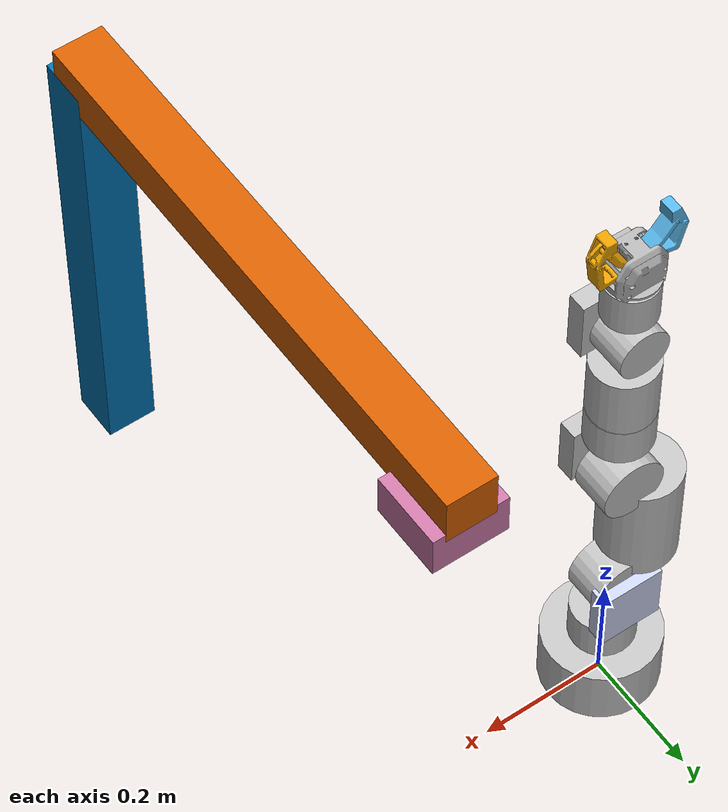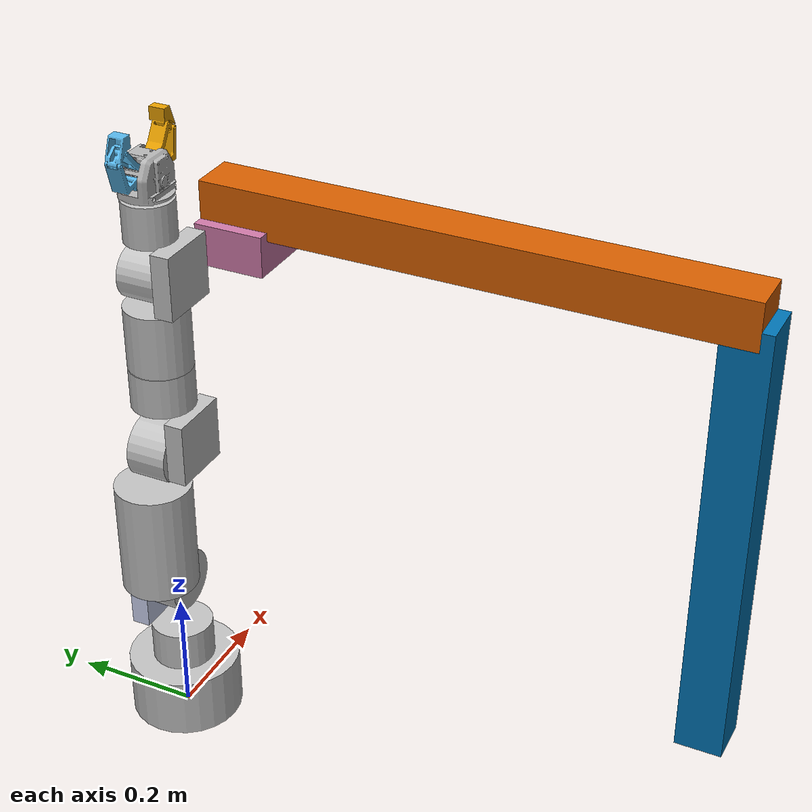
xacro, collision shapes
<?xml version="1.0"?>
<robot xmlns:xacro="http://wiki.ros.org/xacro"
       name="igus_rebel" >
  <xacro:arg name="hardware_protocol" default="rebel"/>
  <xacro:property name="hw_protocol" value="$(arg hardware_protocol)"/>

  <!-- igus_rebel arm and camera stand (no gripper in this file any more) -->
  <xacro:include filename="$(find igus_rebel_description)/urdf/igus_rebel2.urdf" />

  <!-- Gripper, simulated moving fingers in Gazebo, real gripper meshes for everything else -->
  <xacro:if value="${hw_protocol == 'gazebo'}">
    <xacro:include filename="$(find igus_rebel_description)/urdf/sim_gripper.xacro"/>
    <xacro:include filename="$(find igus_rebel_description)/urdf/sim_camera.xacro"/>
  </xacro:if>
  <xacro:unless value="${hw_protocol == 'gazebo'}">
    <xacro:include filename="$(find igus_rebel_description)/urdf/gripper_real.xacro"/>
  </xacro:unless>

  <xacro:include filename="$(find igus_rebel_description)/urdf/igus_rebel2.control.xacro"/>
  <xacro:igus_rebel_control arm_id="rebel_arm" hardware_protocol="$(arg hardware_protocol)"/>

  <link name="world" />

  <joint name="world_joint" type="fixed">
    <parent link="world" />
    <child link = "base_link" />
    <origin xyz="0.0 0.0 0.0" rpy="0.0 0.0 0.0" />
  </joint>

</robot>

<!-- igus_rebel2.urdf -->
<robot
  name="igus_rebel">
  <link
    name="base_link">
    <inertial>
      <origin
        xyz="-0.0011101 -0.00059494 0.040917"
        rpy="0 0 0" />
      <mass
        value="4.2944" />
      <inertia
        ixx="0.098117"
        ixy="4.4465E-07"
        ixz="3.3605E-05"
        iyy="0.086593"
        iyz="-1.8837E-06"
        izz="0.12838" />
    </inertial>
    <visual>
      <origin
        xyz="0 0 0"
        rpy="0 0 0" />
      <geometry>
        <mesh
          filename="file://$(find igus_rebel_description)/meshes/robolink_rebel2/base_link.stl" />
      </geometry>
      <material
        name="">
        <color
          rgba="0.75294 0.75294 0.75294 1" />
      </material>
    </visual>
    <collision>
      <origin
        xyz="0 0 0.05"
        rpy="0 0 0" />
      <geometry>
        <cylinder radius="0.09" length="0.1"/>
      </geometry>
    </collision>
  </link>
  <link
    name="motor1">
    <inertial>
      <origin
        xyz="0.00015243 0.00010812 -0.014668"
        rpy="0 0 0" />
      <mass
        value="2" />
      <inertia
        ixx="0.024041"
        ixy="8.3398E-08"
        ixz="-7.2533E-07"
        iyy="0.024081"
        iyz="-6.2967E-07"
        izz="0.037427" />
    </inertial>
    <visual>
      <origin
        xyz="0 0 0"
        rpy="0 0 0" />
      <geometry>
        <mesh
          filename="file://$(find igus_rebel_description)/meshes/robolink_rebel2/motor1.stl" />
      </geometry>
      <material
        name="">
        <color
          rgba="0.75294 0.75294 0.75294 1" />
      </material>
    </visual>
    <collision>
      <origin
        xyz="0 0 -0.0125"
        rpy="0 0 0" />
      <geometry>
        <cylinder radius="0.05" length="0.065"/>
      </geometry>
    </collision>
  </link>
  <joint
    name="J_motor1"
    type="fixed">
    <origin
      xyz="0 0 0.1462"
      rpy="0 0 3.1416" />
    <parent
      link="base_link" />
    <child
      link="motor1" />
    <axis
      xyz="0 0 0" />
  </joint>
  <link
    name="link1">
    <inertial>
      <origin
        xyz="2.5064E-06 -0.031151 0.06301"
        rpy="0 0 0" />
      <mass
        value="1.9246" />
      <inertia
        ixx="0.046865"
        ixy="-3.7969E-09"
        ixz="5.1665E-09"
        iyy="0.04904"
        iyz="0.00010721"
        izz="0.030611" />
    </inertial>
    <visual>
      <origin
        xyz="0 0 0"
        rpy="0 0 0" />
      <geometry>
        <mesh
          filename="file://$(find igus_rebel_description)/meshes/robolink_rebel2/link1.stl" />
      </geometry>
      <material
        name="">
        <color
          rgba="0.79216 0.81961 0.93333 1" />
      </material>
    </visual>
    <collision>
      <origin
        xyz="0 -0.045 0.08"
        rpy="0 0 0" />
      <geometry>
        <box size="0.1 0.03 0.1"/>
      </geometry>
    </collision>
  </link>
  <joint
    name="joint1"
    type="revolute">
    <origin
      xyz="0 0 0"
      rpy="0 0 0" />
    <parent
      link="motor1" />
    <child
      link="link1" />
    <axis
      xyz="0 0 1" />
    <limit
      lower="-3.1241"
      upper="3.1241"
      effort="330"
      velocity="2.16" />
    <dynamics
      damping="0.0"
      friction="0.0" />
  </joint>
  <link
    name="motor2">
    <inertial>
      <origin
        xyz="0.00015243 0.014668 0.00010812"
        rpy="0 0 0" />
      <mass
        value="2" />
      <inertia
        ixx="0.024041"
        ixy="7.2533E-07"
        ixz="8.3398E-08"
        iyy="0.037427"
        iyz="6.2967E-07"
        izz="0.024081" />
    </inertial>
    <visual>
      <origin
        xyz="0 0 0"
        rpy="0 0 0" />
      <geometry>
        <mesh
          filename="file://$(find igus_rebel_description)/meshes/robolink_rebel2/motor2.stl" />
      </geometry>
      <material
        name="">
        <color
          rgba="0.75294 0.75294 0.75294 1" />
      </material>
    </visual>
    <collision>
      <origin
        xyz="0 0.0125 0"
        rpy="1.57079 0 0" />
      <geometry>
        <cylinder radius="0.05" length="0.065"/>
      </geometry>
    </collision>
  </link>
  <joint
    name="J_motor2"
    type="fixed">
    <origin
      xyz="0 -0.0225000000000001 0.106"
      rpy="0 0 0" />
    <parent
      link="link1" />
    <child
      link="motor2" />
    <axis
      xyz="0 0 0" />
  </joint>
  <link
    name="link2">
    <inertial>
      <origin
        xyz="0.023424 0.025337 0.10782"
        rpy="0 0 0" />
      <mass
        value="5.689" />
      <inertia
        ixx="0.1162"
        ixy="-2.0164E-11"
        ixz="-0.00018569"
        iyy="0.10155"
        iyz="5.9595E-10"
        izz="0.08965" />
    </inertial>
    <visual>
      <origin
        xyz="0 0 0"
        rpy="0 0 0" />
      <geometry>
        <mesh
          filename="file://$(find igus_rebel_description)/meshes/robolink_rebel2/link2.stl" />
      </geometry>
      <material
        name="">
        <color
          rgba="0.75294 0.75294 0.75294 1" />
      </material>
    </visual>
    <collision>
      <origin
        xyz="0.05 -0.025 0.12"
        rpy="0 0 0" />
      <geometry>
        <cylinder radius="0.06" length="0.18"/>
      </geometry>
    </collision>
  </link>
  <joint
    name="joint2"
    type="revolute">
    <origin
      xyz="0 0.049 0"
      rpy="0 0 0" />
    <parent
      link="motor2" />
    <child
      link="link2" />
    <axis
      xyz="0 -1 0" />
    <limit
      lower="-1.4835"
      upper="2.4435"
      effort="330"
      velocity="2.16" />
    <dynamics
      damping="0.0"
      friction="0.0" />
  </joint>
  <link
    name="motor3">
    <inertial>
      <origin
        xyz="0.00015243 0.014668 0.00010812"
        rpy="0 0 0" />
      <mass
        value="2.0785" />
      <inertia
        ixx="0.024041"
        ixy="7.2533E-07"
        ixz="8.3398E-08"
        iyy="0.037427"
        iyz="6.2967E-07"
        izz="0.024081" />
    </inertial>
    <visual>
      <origin
        xyz="0 0 0"
        rpy="0 0 0" />
      <geometry>
        <mesh
          filename="file://$(find igus_rebel_description)/meshes/robolink_rebel2/motor3.stl" />
      </geometry>
      <material
        name="">
        <color
          rgba="0.75294 0.75294 0.75294 1" />
      </material>
    </visual>
    <collision>
      <origin
        xyz="0 0.0125 0"
        rpy="1.57079 0 0" />
      <geometry>
        <cylinder radius="0.05" length="0.065"/>
      </geometry>
    </collision>
  </link>
  <joint
    name="J_motor3"
    type="fixed">
    <origin
      xyz="0 -0.049 0.24152"
      rpy="0 0 0" />
    <parent
      link="link2" />
    <child
      link="motor3" />
    <axis
      xyz="0 0 0" />
  </joint>
  <link
    name="link3">
    <inertial>
      <origin
        xyz="1.8683E-06 0.030601 0.032537"
        rpy="0 0 0" />
      <mass
        value="2.5429" />
      <inertia
        ixx="0.051458"
        ixy="3.7774E-09"
        ixz="-4.5694E-09"
        iyy="0.057983"
        iyz="0.00010721"
        izz="0.035205" />
    </inertial>
    <visual>
      <origin
        xyz="0 0 0"
        rpy="0 0 0" />
      <geometry>
        <mesh
          filename="file://$(find igus_rebel_description)/meshes/robolink_rebel2/link3.stl" />
      </geometry>
      <material
        name="">
        <color
          rgba="0.75294 0.75294 0.75294 1" />
      </material>
    </visual>
    <collision>
      <origin
        xyz="0 0.045 0.03"
        rpy="0 0 0" />
      <geometry>
        <box size="0.1 0.03 0.1"/>
      </geometry>
    </collision>
  </link>
  <joint
    name="joint3"
    type="revolute">
    <origin
      xyz="0 0.0225 0"
      rpy="0 0 0" />
    <parent
      link="motor3" />
    <child
      link="link3" />
    <axis
      xyz="0 -1 0" />
    <limit
      lower="-1.39626"
      upper="2.61799"
      effort="330"
      velocity="2.16" />
    <dynamics
      damping="0.0"
      friction="0.0" />
  </joint>
  <link
    name="motor4">
    <inertial>
      <origin
        xyz="0.00015243 -0.00010812 0.014668"
        rpy="0 0 0" />
      <mass
        value="2.0785" />
      <inertia
        ixx="0.024041"
        ixy="-8.3398E-08"
        ixz="7.2533E-07"
        iyy="0.024081"
        iyz="-6.2967E-07"
        izz="0.037427" />
    </inertial>
    <visual>
      <origin
        xyz="0 0 0"
        rpy="0 0 0" />
      <geometry>
        <mesh
          filename="file://$(find igus_rebel_description)/meshes/robolink_rebel2/motor4.stl" />
      </geometry>
      <material
        name="">
        <color
          rgba="0.75294 0.75294 0.75294 1" />
      </material>
    </visual>
    <collision>
      <origin
        xyz="0 0 0.0125"
        rpy="0 0 0" />
      <geometry>
        <cylinder radius="0.05" length="0.065"/>
      </geometry>
    </collision>
  </link>
  <joint
    name="J_motor4"
    type="fixed">
    <origin
      xyz="0.0013449814287804 0 0.105479407401356"
      rpy="0 0 0" />
    <parent
      link="link3" />
    <child
      link="motor4" />
    <axis
      xyz="0 0 0" />
  </joint>
  <link
    name="link4">
    <inertial>
      <origin
        xyz="-0.0070458 -0.00089773 0.05185"
        rpy="0 0 0" />
      <mass
        value="2.2059" />
      <inertia
        ixx="0.02402"
        ixy="1.096E-07"
        ixz="2.3983E-05"
        iyy="0.025662"
        iyz="-1.1343E-06"
        izz="0.030673" />
    </inertial>
    <visual>
      <origin
        xyz="0 0 0"
        rpy="0 0 0" />
      <geometry>
        <mesh
          filename="file://$(find igus_rebel_description)/meshes/robolink_rebel2/link4.stl" />
      </geometry>
      <material
        name="">
        <color
          rgba="0.75294 0.75294 0.75294 1" />
      </material>
    </visual>
    <collision>
      <origin
        xyz="0 0 0.044"
        rpy="0 0 0" />
      <geometry>
        <cylinder radius="0.05" length="0.1"/>
      </geometry>
    </collision>
  </link>
  <joint
    name="joint4"
    type="revolute">
    <origin
      xyz="0 0 0.052"
      rpy="0 0 0" />
    <parent
      link="motor4" />
    <child
      link="link4" />
    <axis
      xyz="0 0 1" />
    <limit
      lower="-3.12414"
      upper="3.12414"
      effort="330"
      velocity="2.16" />
    <dynamics
      damping="0.0"
      friction="0.0" />
  </joint>
  <link
    name="motor5">
    <inertial>
      <origin
        xyz="3.9518E-05 0.02054 -0.00015792"
        rpy="0 0 0" />
      <mass
        value="1.3011" />
      <inertia
        ixx="0.010922"
        ixy="3.1358E-08"
        ixz="1.683E-08"
        iyy="0.014448"
        iyz="-3.8659E-08"
        izz="0.010868" />
    </inertial>
    <visual>
      <origin
        xyz="0 0 0"
        rpy="0 0 0" />
      <geometry>
        <mesh
          filename="file://$(find igus_rebel_description)/meshes/robolink_rebel2/motor5.stl" />
      </geometry>
      <material
        name="">
        <color
          rgba="0.75294 0.75294 0.75294 1" />
      </material>
    </visual>
    <collision>
      <origin
        xyz="0 0.0125 0"
        rpy="1.57079 0 0" />
      <geometry>
        <cylinder radius="0.04" length="0.065"/>
      </geometry>
    </collision>
  </link>
  <joint
    name="J_motor5"
    type="fixed">
    <origin
      xyz="0 -0.0182 0.142"
      rpy="0 0 0" />
    <parent
      link="link4" />
    <child
      link="motor5" />
    <axis
      xyz="0 0 0" />
  </joint>
  <link
    name="link5">
    <inertial>
      <origin
        xyz="7.5874E-05 0.022847 0.026585"
        rpy="0 0 0" />
      <mass
        value="0.70922" />
      <inertia
        ixx="0.0091752"
        ixy="-5.1443E-08"
        ixz="-7.751E-09"
        iyy="0.0086093"
        iyz="2.4553E-05"
        izz="0.0079966" />
    </inertial>
    <visual>
      <origin
        xyz="0 0 0"
        rpy="0 0 0" />
      <geometry>
        <mesh
          filename="file://$(find igus_rebel_description)/meshes/robolink_rebel2/link5.stl" />
      </geometry>
      <material
        name="">
        <color
          rgba="0.75294 0.75294 0.75294 1" />
      </material>
    </visual>
    <collision>
      <origin
        xyz="0 0.045 0.01"
        rpy="0 0 0" />
      <geometry>
        <box size="0.1 0.03 0.1"/>
      </geometry>
    </collision>
  </link>
  <joint
    name="joint5"
    type="continuous">
    <origin
      xyz="0 0.0182 0"
      rpy="0 0 0" />
    <parent
      link="motor5" />
    <child
      link="link5" />
    <axis
      xyz="0 -1 0" />
    <limit
      lower="-1.65806"
      upper="1.65806"
      effort="330"
      velocity="2.16" />
    <dynamics
      damping="0.0"
      friction="0.0" />
  </joint>

  <link
    name="link6">
    <inertial>
      <origin
        xyz="-0.00016088 -4.7449E-05 0.021219"
        rpy="0 0 0" />
      <mass
        value="1.2658" />
      <inertia
        ixx="0.010763"
        ixy="-2.2861E-07"
        ixz="-4.9144E-08"
        iyy="0.010792"
        iyz="-2.2502E-08"
        izz="0.014496" />
    </inertial>
    <visual>
      <origin
        xyz="0 0 0"
        rpy="0 0 0" />
      <geometry>
        <mesh
          filename="file://$(find igus_rebel_description)/meshes/robolink_rebel2/link6.stl" />
      </geometry>
      <material
        name="">
        <color
          rgba="0.75294 0.75294 0.75294 1" />
      </material>
    </visual>
    <collision>
      <origin
        xyz="0 0 0.0125"
        rpy="0 0 0" />
      <geometry>
        <cylinder radius="0.04" length="0.065"/>
      </geometry>
    </collision>
  </link>

  <joint
    name="joint6"
    type="revolute">
    <origin
      xyz="0 0 0.0768"
      rpy="0 0 0" />
    <parent
      link="link5" />
    <child
      link="link6" />
    <axis
      xyz="0 0 1" />
    <limit
      lower="-3.12414"
      upper="3.12414"
      effort="330"
      velocity="2.16" />
    <dynamics
      damping="0.0"
      friction="0.0" />
  </joint>

  <link name="camera_stand_pole">
    <visual>
      <geometry><box size="0.05 0.05 0.745"/></geometry>
    </visual>
    <collision>
      <geometry><box size="0.08 0.08 0.78"/></geometry>  <!-- padded a few cm larger than real -->
    </collision>
    <inertial>
      <mass value="1.0"/>
      <inertia ixx="0.01" ixy="0" ixz="0" iyy="0.01" iyz="0" izz="0.01"/>
    </inertial>
  </link>

  <joint name="world_to_camera_stand" type="fixed">
    <parent link="world"/>
    <child link="camera_stand_pole"/>
    <origin xyz="0.31 -0.80 0.3725" rpy="0 0 0"/>  <!-- adjust to  measured position -->
  </joint>

  <link name="camera_stand_horizontal">
    <visual>
      <geometry><box size="0.87 0.05 0.05"/></geometry>
    </visual>
    <collision>
      <geometry><box size="0.91 0.08 0.08"/></geometry>
    </collision>
    <inertial>
      <mass value="1.0"/>
      <inertia ixx="0.01" ixy="0" ixz="0" iyy="0.01" iyz="0" izz="0.01"/>
    </inertial>
  </link>
  <joint name="camera_stand_to_horizontal" type="fixed">
    <parent link="camera_stand_pole"/>
    <child link="camera_stand_horizontal"/>
    <origin xyz="0 0.435 0.3975" rpy="0 0 -1.5708"/>
  </joint>

  <link name="camera_visual_link">
    <visual>
      <geometry><box size="0.10 0.10 0.05"/></geometry>
    </visual>
    <collision>
      <geometry><box size="0.12 0.12 0.07"/></geometry>
    </collision>
    <inertial>
      <mass value="1.0"/>
      <inertia ixx="0.01" ixy="0" ixz="0" iyy="0.01" iyz="0" izz="0.01"/>
    </inertial>
  </link>

  <joint name="camera_stand_to_camera" type="fixed">
    <parent link="camera_stand_horizontal"/>
    <child link="camera_visual_link"/>
    <origin xyz="-0.395 0 -0.060" rpy="0 0 0"/>
  </joint>
</robot>

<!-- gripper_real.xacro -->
<robot xmlns:xacro="http://www.ros.org/wiki/xacro">

  <!-- Real gripper with STL meshes and fixed finger joints (the real gripper is digital open/close only). -->

  <link name="gripper_base">
    <visual>
        <origin xyz="0 0 0" rpy="0 0 0"/>
        <geometry>
            <mesh filename="file://$(find igus_rebel_description)/meshes/gripper/gripper_base.stl"
                  scale="0.001 0.001 0.001"/>
        </geometry>
    </visual>

    <collision>
        <origin xyz="0 0 0" rpy="0 0 0"/>
        <geometry>
            <mesh filename="file://$(find igus_rebel_description)/meshes/gripper/gripper_base.stl"
                  scale="0.001 0.001 0.001"/>
        </geometry>
    </collision>

    <inertial>
        <origin xyz="0 0 0" rpy="0 0 0"/>
        <mass value="1.0"/>
        <inertia
            ixx="0.01" ixy="0" ixz="0"
            iyy="0.01" iyz="0"
            izz="0.01"/>
    </inertial>
  </link>

  <link name="gripper_left">

    <visual>
      <origin xyz="0 0 0" rpy="0 0 0"/>
      <geometry>
        <mesh
          filename="file://$(find igus_rebel_description)/meshes/gripper/left_link.stl"
          scale="0.001 0.001 0.001"/>
      </geometry>
    </visual>

    <collision>
      <origin xyz="0 0 0" rpy="0 0 0"/>
      <geometry>
        <mesh
          filename="file://$(find igus_rebel_description)/meshes/gripper/left_link.stl"
          scale="0.001 0.001 0.001"/>
      </geometry>
    </collision>

    <inertial>
      <origin xyz="0 0 0" rpy="0 0 0"/>
      <mass value="0.2"/>
      <inertia
        ixx="0.001"
        ixy="0"
        ixz="0"
        iyy="0.001"
        iyz="0"
        izz="0.001"/>
    </inertial>

  </link>

  <joint name="gripper_mount_joint" type="fixed">
    <parent link="link6"/>
    <child link="gripper_base"/>

    <origin
    xyz="0 -0.02 0.054"
    rpy="1.570796 0 0"/>
  </joint>

  <joint name="gripper_left_joint" type="fixed">

    <parent link="gripper_base"/>
    <child link="gripper_left"/>

    <origin
        xyz="0 0 0"
        rpy="0 0 0"/>

    <axis
        xyz="0 0 1"/>

    <limit
        lower="-1.57"
        upper="1.57"
        effort="10"
        velocity="1.0"/>

  </joint>

  <link name="gripper_right">

    <visual>
      <origin xyz="0 0 0" rpy="0 0 0"/>
      <geometry>
        <mesh
          filename="file://$(find igus_rebel_description)/meshes/gripper/right_link.stl"
          scale="0.001 0.001 0.001"/>
      </geometry>
    </visual>

    <collision>
      <origin xyz="0 0 0" rpy="0 0 0"/>
      <geometry>
        <mesh
          filename="file://$(find igus_rebel_description)/meshes/gripper/right_link.stl"
          scale="0.001 0.001 0.001"/>
      </geometry>
    </collision>

    <inertial>
      <origin xyz="0 0 0" rpy="0 0 0"/>
      <mass value="0.2"/>
      <inertia
        ixx="0.001"
        ixy="0"
        ixz="0"
        iyy="0.001"
        iyz="0"
        izz="0.001"/>
    </inertial>
  </link>

  <joint name="gripper_right_joint" type="fixed">

    <parent link="gripper_base"/>
    <child link="gripper_right"/>

    <origin
        xyz="0 0 0"
        rpy="0 0 0"/>

    <axis
        xyz="0 0 1"/>

    <limit
        lower="-1.57"
        upper="1.57"
        effort="10"
        velocity="1.0"/>

  </joint>

</robot>
